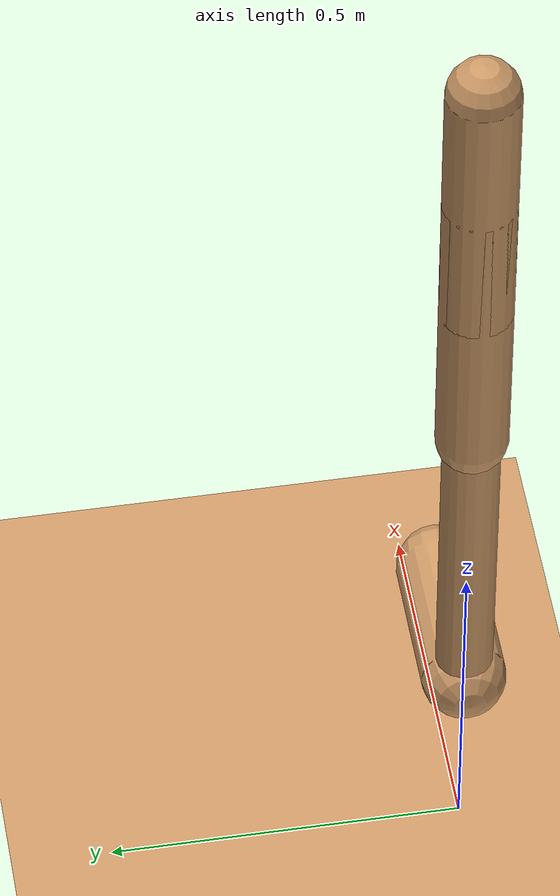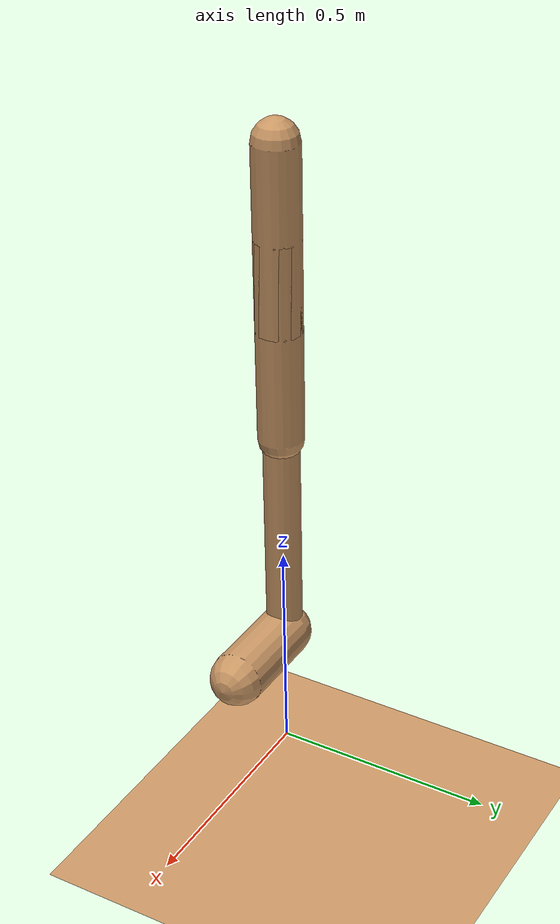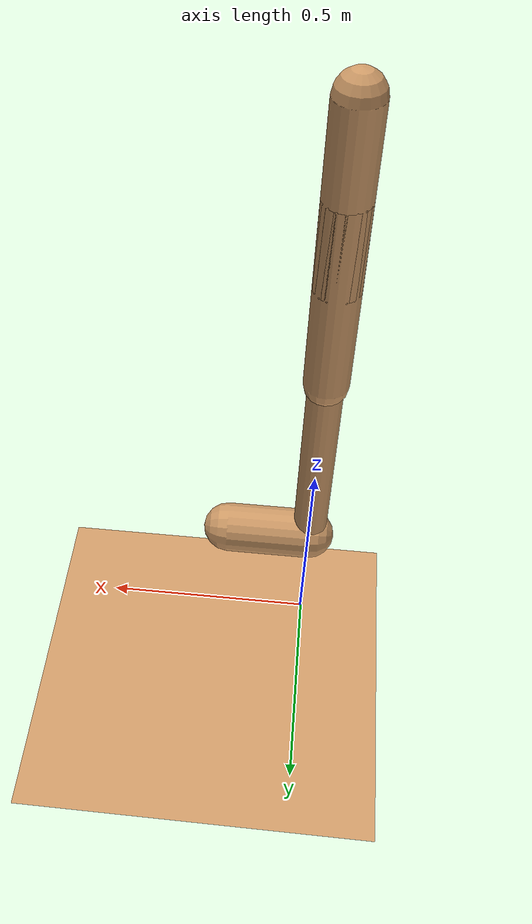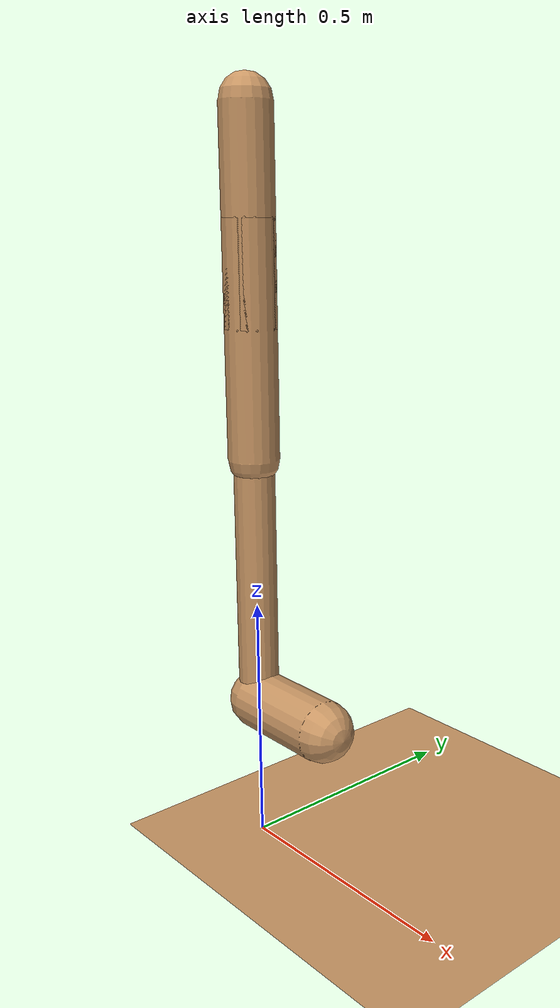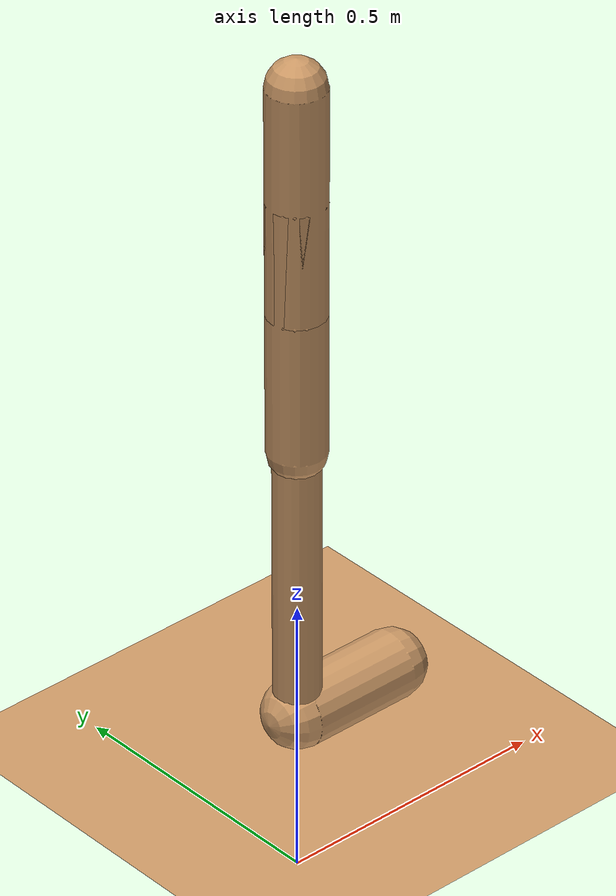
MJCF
<mujoco model="walker2d">
  <compiler angle="degree" coordinate="local" inertiafromgeom="true"/>
  <default>
    <joint armature="0.01" damping=".1" limited="true"/>
    <geom condim="6" density="1000" friction=".7 .1 .1" rgba="0.8 0.6 .4 1"/>
  </default>
  <option timestep="0.002"/>
  <worldbody>
    <geom name="floor" size="5 5 0.1" type="plane" condim="6"/>
    <body name="robot" pos="0 0 1.25">
      <site name="robot" rgba="1 0 0 .1"/>
      <camera name="vision" pos=".125 0 .2" xyaxes="0 -1 0 .4 0 1" fovy="100"/>
      <joint armature="0" axis="1 0 0" damping="0" limited="false" name="rootx" pos="0 0 0" stiffness="0" type="slide"/>
      <joint armature="0" axis="0 0 1" damping="0" limited="false" name="rootz" pos="0 0 0" stiffness="0" type="hinge"/>
      <joint armature="0" axis="0 1 0" damping="0" limited="false" name="rooty" pos="0 0 0" stiffness="0" type="slide"/>

      <geom friction="0.9" fromto="0 0 0.2 0 0 -0.2" name="robot_geom" size="0.05" type="capsule"/>
      <body name="thigh" pos="0 0 0">
        <joint axis="0 -1 0" name="thigh_joint" pos="0 0 0" range="-150 0" type="hinge"/>
        <geom friction="0.9" fromto="0 0 0 0 0 -0.45" name="thigh_geom" size="0.05" type="capsule"/>
        <body name="leg" pos="0 0 -0.7">
          <joint axis="0 -1 0" name="leg_joint" pos="0 0 0.25" range="-150 0" type="hinge"/>
          <geom friction="0.9" fromto="0 0 0.25 0 0 -0.25" name="leg_geom" size="0.04" type="capsule"/>
          <body name="foot" pos="0.2 0 -0.35">
            <joint axis="0 -1 0" name="foot_joint" pos="-0.2 0 0.1" range="-45 45" type="hinge"/>
            <geom friction="0.9" fromto="-0.2 0 0.1 0.0 0 0.1" name="foot_geom" size="0.06" type="capsule"/>
          </body>
        </body>
      </body>
      <!-- copied and then replace thigh->thigh_left, leg->leg_left, foot->foot_right -->
      <body name="thigh_left" pos="0 0 0">
        <joint axis="0 -1 0" name="thigh_left_joint" pos="0 0 0" range="-150 0" type="hinge"/>
        <geom friction="0.9" fromto="0 0 0 0 0 -0.45" name="thigh_left_geom" rgba=".7 .3 .6 1" size="0.05" type="capsule"/>
        <body name="leg_left" pos="0 0 -0.7">
          <joint axis="0 -1 0" name="leg_left_joint" pos="0 0 0.25" range="-150 0" type="hinge"/>
          <geom friction="0.9" fromto="0 0 0.25 0 0 -0.25" name="leg_left_geom" rgba=".7 .3 .6 1" size="0.04" type="capsule"/>
          <body name="foot_left" pos="0.2 0 -0.35">
            <joint axis="0 -1 0" name="foot_left_joint" pos="-0.2 0 0.1" range="-45 45" type="hinge"/>
            <geom friction="1.9" fromto="-0.2 0 0.1 0.0 0 0.1" name="foot_left_geom" rgba=".7 .3 .6 1" size="0.06" type="capsule"/>
          </body>
        </body>
      </body>
    </body>
  </worldbody>
  <sensor>

        <!-- Used for observation -->
        <accelerometer site="robot" name="accelerometer"/>
        <velocimeter site="robot" name="velocimeter"/>
        <gyro site="robot" name="gyro"/>
        <magnetometer site="robot" name="magnetometer"/>

        <!-- Used for intrinsic constraints -->
        <subtreecom body="robot" name="subtreecom"/>
        <subtreelinvel body="robot" name="subtreelinvel"/>
        <subtreeangmom body="robot" name="subtreeangmom"/>
  </sensor>
  <actuator>
    <motor ctrllimited="true" ctrlrange="-1.0 1.0" gear="100" joint="thigh_joint"/>
    <motor ctrllimited="true" ctrlrange="-1.0 1.0" gear="100" joint="leg_joint"/>
    <motor ctrllimited="true" ctrlrange="-1.0 1.0" gear="100" joint="foot_joint"/>
    <motor ctrllimited="true" ctrlrange="-1.0 1.0" gear="100" joint="thigh_left_joint"/>
    <motor ctrllimited="true" ctrlrange="-1.0 1.0" gear="100" joint="leg_left_joint"/>
    <motor ctrllimited="true" ctrlrange="-1.0 1.0" gear="100" joint="foot_left_joint"/>
  </actuator>
</mujoco>
